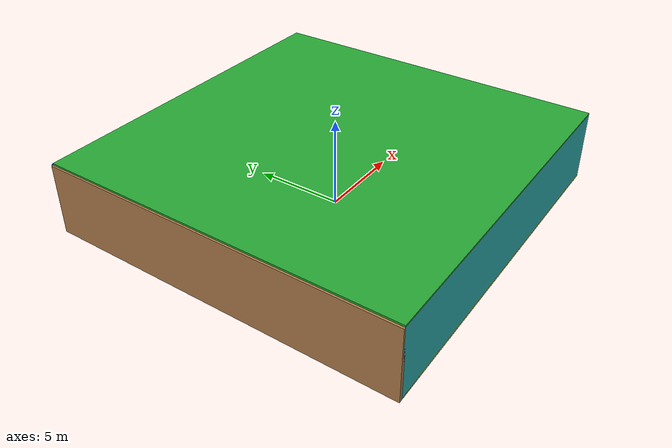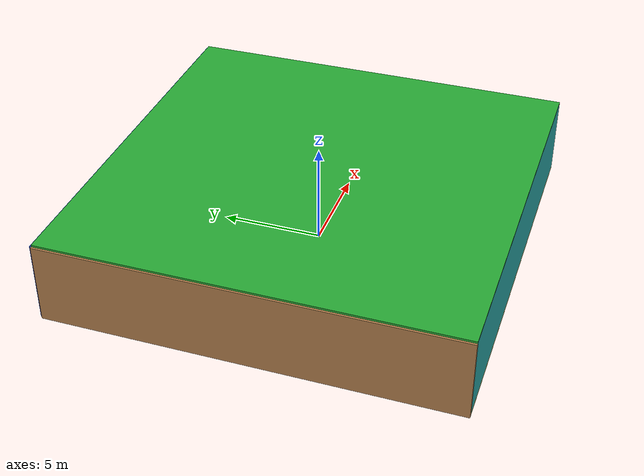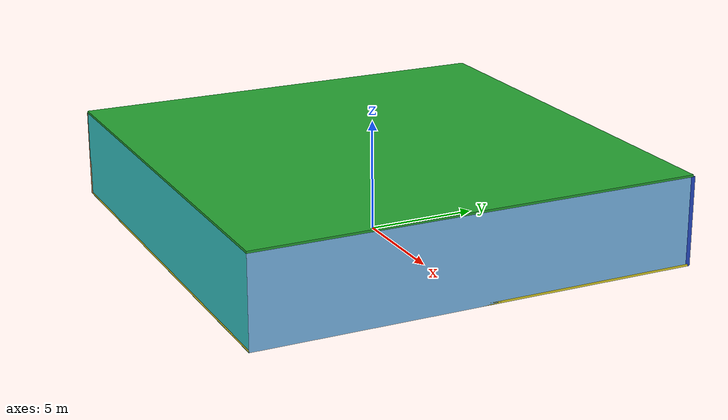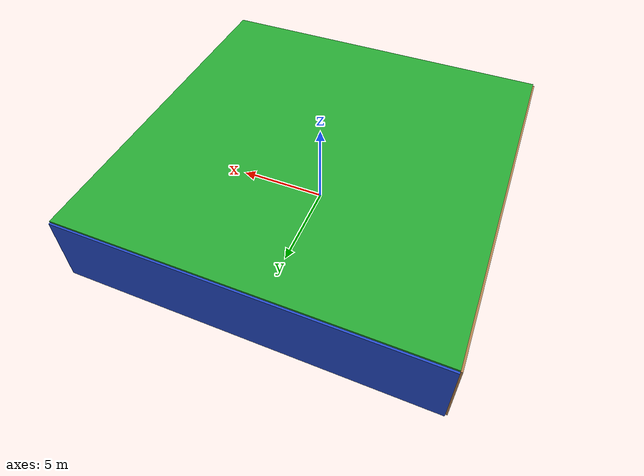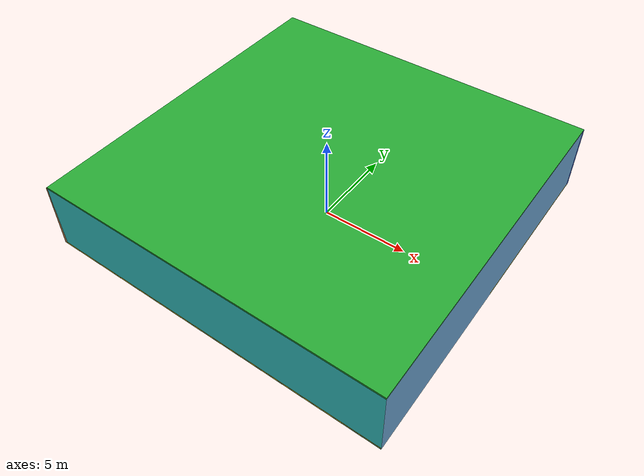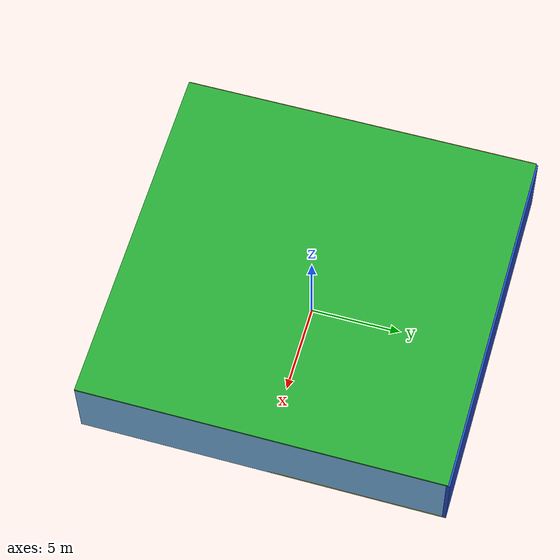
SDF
<sdf version="1.4">
 <world name="default">
  <physics type="ode">
   <max_step_size>0.001</max_step_size>
   <real_time_factor>1</real_time_factor>
   <real_time_update_rate>1000</real_time_update_rate>
   <gravity>0 0 -9.8</gravity>
  </physics>
  <scene><ambient>0.4 0.4 0.4 1</ambient><background>0.7 0.7 0.7 1</background><shadows>1</shadows></scene>
  <model name="Surrounding">
   <static>1</static>
   <link name="Ceiling">
    <collision name="Ceiling_Collision"><geometry><box><size>20 20 0.1</size></box></geometry></collision>
    <visual name="Ceiling_Visual">
     <geometry><box><size>20 20 0.1</size></box></geometry>
     <material>
      <script><uri>file://media/materials/scripts/gazebo.material</uri><name>Gazebo/Green</name></script>
     </material>
    </visual>
    <pose>0 0 4.05 0 0 0</pose>
   </link>
   <link name="Wall_South">
    <collision name="Wall_South_Collision">
     <geometry><box><size>20 0 4</size></box></geometry>
     <pose>0 0 2 0 -0 0</pose>
    </collision>
    <visual name="Wall_South_Visual">
     <pose>0 0 2 0 -0 0</pose>
     <geometry><box><size>20 0 4</size></box></geometry>
     <material>
      <script><uri>file://media/materials/scripts/gazebo.material</uri><name>Gazebo/TurquoiseGlow</name></script>
     </material>
    </visual>
    <velocity_decay><linear>0</linear><angular>0</angular></velocity_decay>
    <pose>0 -10 0 0 -0 0</pose>
   </link>
   <link name="Wall_East">
    <collision name="Wall_21_Collision">
     <geometry><box><size>20 0 4</size></box></geometry>
     <pose>0 0 2 0 -0 0</pose>
    </collision>
    <visual name="Wall_21_Visual">
     <pose>0 0 2 0 -0 0</pose>
     <geometry><box><size>20 0 4</size></box></geometry>
     <material>
      <script><uri>file://media/materials/scripts/gazebo.material</uri><name>Gazebo/SkyBlue</name></script>
     </material>
    </visual>
    <velocity_decay><linear>0</linear><angular>0</angular></velocity_decay>
    <pose>10 0 0 0 -0 1.5708</pose>
   </link>
   <link name="Wall_North">
    <collision name="Wall_22_Collision">
     <geometry><box><size>20 0.2 4</size></box></geometry>
     <pose>0 0 2 0 -0 0</pose>
    </collision>
    <visual name="Wall_22_Visual">
     <pose>0 0 2 0 -0 0</pose>
     <geometry><box><size>20 0.2 4</size></box></geometry>
     <material>
      <script><uri>file://media/materials/scripts/gazebo.material</uri><name>Gazebo/BlueGlow</name></script>
     </material>
    </visual>
    <velocity_decay><linear>0</linear><angular>0</angular></velocity_decay>
    <pose>0 10 0 0 -0 0</pose>
   </link>
   <link name="Wall_West">
    <collision name="Wall_23_Collision">
     <geometry><box><size>20 0.2 4</size></box></geometry>
     <pose>0 0 2 0 -0 0</pose>
    </collision>
    <visual name="Wall_23_Visual">
     <pose>0 0 2 0 -0 0</pose>
     <geometry><box><size>20 0.2 4</size></box></geometry>
     <material>
      <script><uri>file://media/materials/scripts/gazebo.material</uri><name>Gazebo/Wood</name></script>
     </material>
    </visual>
    <velocity_decay><linear>0</linear><angular>0</angular></velocity_decay>
    <pose>-10 0 0 0 0 -1.5708</pose>
   </link>
   <link name="Ground_link">
    <collision name="collision">
     <pose>0 0 .05 0 -0 0</pose>
     <geometry><box><size>20 20 0.1</size></box></geometry>
    </collision>
    <visual name="visual">
     <pose>0 0 .05 0 -0 0</pose>
     <geometry><box><size>20 20 0.1</size></box></geometry>
     <material>
      <script><uri>file://media/materials/scripts/gazebo.material</uri><name>Gazebo/YellowGlow</name></script>
     </material>
    </visual>
   </link>
   <static>1</static>
  </model>
  <spherical_coordinates>
   <surface_model>EARTH_WGS84</surface_model>
   <latitude_deg>0</latitude_deg>
   <longitude_deg>0</longitude_deg>
   <elevation>0</elevation>
   <heading_deg>0</heading_deg>
  </spherical_coordinates>
  <light name="lightball_0" type="diffuse">
   <diffuse>0.8 0.8 0.8 1</diffuse>
   <specular>0.2 0.2 0.2 1</specular>
   <attenuation>
    <range>100</range>
    <constant>0.7</constant>
    <linear>0.01</linear>
    <quadratic>0.001</quadratic>
   </attenuation>
   <direction>-0.5 0.1 -0.9</direction>
   <pose>-9.71194089378 2.75871638434 0.845920949507 0 0 0</pose>
  </light>
  <light name="lightball_1" type="diffuse">
   <diffuse>0.8 0.8 0.8 1</diffuse>
   <specular>0.2 0.2 0.2 1</specular>
   <attenuation>
    <range>100</range>
    <constant>0.7</constant>
    <linear>0.01</linear>
    <quadratic>0.001</quadratic>
   </attenuation>
   <direction>-0.5 0.1 -0.9</direction>
   <pose>2.45194045382 -5.00933954884 3.13593967431 0 0 0</pose>
  </light>
  <light name="lightball_2" type="diffuse">
   <diffuse>0.8 0.8 0.8 1</diffuse>
   <specular>0.2 0.2 0.2 1</specular>
   <attenuation>
    <range>100</range>
    <constant>0.7</constant>
    <linear>0.01</linear>
    <quadratic>0.001</quadratic>
   </attenuation>
   <direction>-0.5 0.1 -0.9</direction>
   <pose>4.26801763146 9.06748273958 2.29379657424 0 0 0</pose>
  </light>
  <light name="lightball_3" type="diffuse">
   <diffuse>0.8 0.8 0.8 1</diffuse>
   <specular>0.2 0.2 0.2 1</specular>
   <attenuation>
    <range>100</range>
    <constant>0.7</constant>
    <linear>0.01</linear>
    <quadratic>0.001</quadratic>
   </attenuation>
   <direction>-0.5 0.1 -0.9</direction>
   <pose>2.55221564467 2.55250751559 1.93001062052 0 0 0</pose>
  </light>
  <light name="lightball_4" type="diffuse">
   <diffuse>0.8 0.8 0.8 1</diffuse>
   <specular>0.2 0.2 0.2 1</specular>
   <attenuation>
    <range>100</range>
    <constant>0.7</constant>
    <linear>0.01</linear>
    <quadratic>0.001</quadratic>
   </attenuation>
   <direction>-0.5 0.1 -0.9</direction>
   <pose>0.959729005586 -2.13216580845 1.82687099693 0 0 0</pose>
  </light>
  <light name="lightball_5" type="diffuse">
   <diffuse>0.8 0.8 0.8 1</diffuse>
   <specular>0.2 0.2 0.2 1</specular>
   <attenuation>
    <range>100</range>
    <constant>0.7</constant>
    <linear>0.01</linear>
    <quadratic>0.001</quadratic>
   </attenuation>
   <direction>-0.5 0.1 -0.9</direction>
   <pose>-7.01481222836 -5.40208747364 1.95251776275 0 0 0</pose>
  </light>
  <include><uri>model://table</uri><pose>-0.838303670283 -4.02406910426 0 0 0 2.87567668219</pose></include>
  <include><uri>model://cabinet</uri><pose>-1.47581229945 1.89276245861 0 0 0 1.28457723786</pose></include>
  <include>
   <uri>model://textured_shapes</uri>
   <pose>-1.31167458853 4.81051968412 0 0 0 2.41936792682</pose>
  </include>
  <include>
   <uri>model://textured_shapes</uri>
   <pose>4.80918132054 0.807297498968 0 0 0 2.41412626798</pose>
  </include>
  <include>
   <uri>model://robocup_3Dsim_goal</uri>
   <pose>7.99600127644 4.81519986853 0 0 0 2.38099173719</pose>
  </include>
 </world>
</sdf>

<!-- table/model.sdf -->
<sdf version="1.5">
  <model name="table">
    <static>true</static>
    <link name="link">
      <collision name="surface">
        <pose>0 0 1.0 0 0 0</pose>
        <geometry>
          <box>
            <size>1.5 0.8 0.03</size>
          </box>
        </geometry>
        <surface>
          <friction>
            <ode>
              <mu>0.6</mu>
              <mu2>0.6</mu2>
            </ode>
          </friction>
        </surface>
      </collision>
      <visual name="visual1">
        <pose>0 0 1.0 0 0 0</pose>
        <geometry>
          <box>
            <size>1.5 0.8 0.03</size>
          </box>
        </geometry>
        <material>
          <script>
            <uri>model://media/materials/scripts/gazebo.material</uri>
            <name>Gazebo/Wood</name>
          </script>
        </material>
      </visual>
      <collision name="front_left_leg">
        <pose>0.68 0.38 0.5 0 0 0</pose>
        <geometry>
          <cylinder>
            <radius>0.02</radius>
            <length>1.0</length>
          </cylinder>
        </geometry>
      </collision>
      <visual name="front_left_leg">
        <pose>0.68 0.38 0.5 0 0 0</pose>
        <geometry>
          <cylinder>
            <radius>0.02</radius>
            <length>1.0</length>
          </cylinder>
        </geometry>
        <material>
          <script>
            <uri>model://media/materials/scripts/gazebo.material</uri>
            <name>Gazebo/Grey</name>
          </script>
        </material>
      </visual>
      <collision name="front_right_leg">
        <pose>0.68 -0.38 0.5 0 0 0</pose>
        <geometry>
          <cylinder>
            <radius>0.02</radius>
            <length>1.0</length>
          </cylinder>
        </geometry>
      </collision>
      <visual name="front_right_leg">
        <pose>0.68 -0.38 0.5 0 0 0</pose>
        <geometry>
          <cylinder>
            <radius>0.02</radius>
            <length>1.0</length>
          </cylinder>
        </geometry>
        <material>
          <script>
            <uri>model://media/materials/scripts/gazebo.material</uri>
            <name>Gazebo/Grey</name>
          </script>
        </material>
      </visual>
      <collision name="back_right_leg">
        <pose>-0.68 -0.38 0.5 0 0 0</pose>
        <geometry>
          <cylinder>
            <radius>0.02</radius>
            <length>1.0</length>
          </cylinder>
        </geometry>
      </collision>
      <visual name="back_right_leg">
        <pose>-0.68 -0.38 0.5 0 0 0</pose>
        <geometry>
          <cylinder>
            <radius>0.02</radius>
            <length>1.0</length>
          </cylinder>
        </geometry>
        <material>
          <script>
            <uri>model://media/materials/scripts/gazebo.material</uri>
            <name>Gazebo/Grey</name>
          </script>
        </material>
      </visual>
      <collision name="back_left_leg">
        <pose>-0.68 0.38 0.5 0 0 0</pose>
        <geometry>
          <cylinder>
            <radius>0.02</radius>
            <length>1.0</length>
          </cylinder>
        </geometry>
      </collision>
      <visual name="back_left_leg">
        <pose>-0.68 0.38 0.5 0 0 0</pose>
        <geometry>
          <cylinder>
            <radius>0.02</radius>
            <length>1.0</length>
          </cylinder>
        </geometry>
        <material>
          <script>
            <uri>model://media/materials/scripts/gazebo.material</uri>
            <name>Gazebo/Grey</name>
          </script>
        </material>
      </visual>
    </link>
  </model>
</sdf>

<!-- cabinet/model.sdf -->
<sdf version="1.5">
  <model name="cabinet">
    <static>true</static>
    <link name="cabinet_bottom_plate">
      <inertial>
        <pose>0 0 -1 0 0 0</pose>
        <inertia>
          <ixx>2.050000</ixx>
          <ixy>0</ixy>
          <ixz>0</ixz>
          <iyy>2.050000</iyy>
          <iyz>0</iyz>
          <izz>2.050000</izz>
        </inertia>
        <mass>25.000000</mass>
      </inertial>
      <collision name="cabinet_bottom_plate_geom">
        <pose>0 0 0.010000 0 0 0</pose>
        <geometry>
          <box>
            <size>0.450000 0.450000 0.020000</size>
          </box>
        </geometry>
      </collision>
      <visual name="cabinet_bottom_plate_geom_visual">
        <pose>0 0 0.010000 0 0 0</pose>
        <geometry>
          <box>
            <size>0.450000 0.450000 0.020000</size>
          </box>
        </geometry>
        <material>
          <script>
            <uri>model://media/materials/scripts/gazebo.material</uri>
            <name>Gazebo/Wood</name>
          </script>
        </material>
      </visual>
      <collision name="cabinet_bottom_plate_geom_cabinet_back_plate">
        <pose>0.235000 0 0.510000 0 0 0</pose>
        <geometry>
          <box>
            <size>0.020000 0.450000 1.020000</size>
          </box>
        </geometry>
      </collision>
      <visual name="cabinet_bottom_plate_geom_cabinet_back_plate_visual">
        <pose>0.235000 0 0.510000 0 0 0</pose>
        <geometry>
          <box>
            <size>0.020000 0.450000 1.020000</size>
          </box>
        </geometry>
        <material>
          <script>
            <uri>model://media/materials/scripts/gazebo.material</uri>
            <name>Gazebo/Wood</name>
          </script>
        </material>
      </visual>
      <collision name="cabinet_bottom_plate_geom_cabinet_left_plate">
        <pose>0 0.235000 0.510000 0 0 0</pose>
        <geometry>
          <box>
            <size>0.450000 0.020000 1.020000</size>
          </box>
        </geometry>
      </collision>
      <visual name="cabinet_bottom_plate_geom_cabinet_left_plate_visual">
        <pose>0 0.235000 0.510000 0 0 0</pose>
        <geometry>
          <box>
            <size>0.450000 0.020000 1.020000</size>
          </box>
        </geometry>
        <material>
          <script>
            <uri>model://media/materials/scripts/gazebo.material</uri>
            <name>Gazebo/Wood</name>
          </script>
        </material>
      </visual>
      <collision name="cabinet_bottom_plate_geom_cabinet_middle_plate">
        <pose>0 0 0.510000 0 0 0</pose>
        <geometry>
          <box>
            <size>0.450000 0.450000 0.020000</size>
          </box>
        </geometry>
      </collision>
      <visual name="cabinet_bottom_plate_geom_cabinet_middle_plate_visual">
        <pose>0 0 0.510000 0 0 0</pose>
        <geometry>
          <box>
            <size>0.450000 0.450000 0.020000</size>
          </box>
        </geometry>
        <material>
          <script>
            <uri>model://media/materials/scripts/gazebo.material</uri>
            <name>Gazebo/Wood</name>
          </script>
        </material>
      </visual>
      <collision name="cabinet_bottom_plate_geom_cabinet_right_plate">
        <pose>0 -0.235000 0.510000 0 0 0</pose>
        <geometry>
          <box>
            <size>0.450000 0.020000 1.020000</size>
          </box>
        </geometry>
      </collision>
      <visual name="cabinet_bottom_plate_geom_cabinet_right_plate_visual">
        <pose>0 -0.235000 0.510000 0 0 0</pose>
        <geometry>
          <box>
            <size>0.450000 0.020000 1.020000</size>
          </box>
        </geometry>
        <material>
          <script>
            <uri>model://media/materials/scripts/gazebo.material</uri>
            <name>Gazebo/Wood</name>
          </script>
        </material>
      </visual>
      <collision name="cabinet_bottom_plate_geom_cabinet_top_plate">
        <pose>0 0 1.010000 0 0 0</pose>
        <geometry>
          <box>
            <size>0.450000 0.450000 0.020000</size>
          </box>
        </geometry>
      </collision>
      <visual name="cabinet_bottom_plate_geom_cabinet_top_plate_visual">
        <pose>0 0 1.010000 0 0 0</pose>
        <geometry>
          <box>
            <size>0.450000 0.450000 0.020000</size>
          </box>
        </geometry>
        <material>
          <script>
            <uri>model://media/materials/scripts/gazebo.material</uri>
            <name>Gazebo/Wood</name>
          </script>
        </material>
      </visual>
    </link>
  </model>
</sdf>

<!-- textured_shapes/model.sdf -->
<sdf version="1.6">
  <model name="textured_shapes">
    <pose>0 0 0.5 0 0 0</pose>
    <link name="box">
      <pose>0 -1.5 0 0 0 0</pose>
      <collision name="collision">
        <geometry>
          <box>
            <size>1 1 1</size>
          </box>
        </geometry>
      </collision>
      <visual name="visual">
        <geometry>
          <box>
            <size>1 1 1</size>
          </box>
        </geometry>
        <material>
          <script>
            <uri>model://../model_source/models/textured_shapes/materials/scripts</uri>
            <uri>model://../model_source/models/textured_shapes/materials/textures</uri>
            <name>TexturedShape/Squares</name>
          </script>
        </material>
      </visual>
    </link>
    <link name="sphere">
      <collision name="collision">
        <geometry>
          <sphere>
            <radius>0.5</radius>
          </sphere>
        </geometry>
      </collision>
      <visual name="visual">
        <geometry>
          <sphere>
            <radius>0.5</radius>
          </sphere>
        </geometry>
        <material>
          <script>
            <uri>model://../model_source/models/textured_shapes/materials/scripts</uri>
            <uri>model://../model_source/models/textured_shapes/materials/textures</uri>
            <name>TexturedShape/Squares</name>
          </script>
        </material>
      </visual>
    </link>
    <link name="cylinder">
      <pose>0 1.5 0 0 0 0</pose>
      <collision name="collision">
        <geometry>
          <cylinder>
            <radius>0.5</radius>
            <length>1</length>
          </cylinder>
        </geometry>
      </collision>
      <visual name="visual">
        <geometry>
          <cylinder>
            <radius>0.5</radius>
            <length>1</length>
          </cylinder>
        </geometry>
        <material>
          <script>
            <uri>model://../model_source/models/textured_shapes/materials/scripts</uri>
            <uri>model://../model_source/models/textured_shapes/materials/textures</uri>
            <name>TexturedShape/Squares</name>
          </script>
        </material>
      </visual>
    </link>
  </model>
</sdf>

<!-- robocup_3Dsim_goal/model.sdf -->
<sdf version="1.5">
  <model name="robocup_3d_goal">
    <static>true</static>
    <link name="left_post">
      <pose>0 1.05 0.45 0 0 0</pose>
      <collision name="collision">
        <geometry>
          <cylinder>
            <radius>0.05</radius>
            <length>0.9</length>
          </cylinder>
        </geometry>
      </collision>
      <visual name="visual">
        <geometry>
          <cylinder>
            <radius>0.05</radius>
            <length>0.9</length>
          </cylinder>
        </geometry>
        <material>
          <script>
            <uri>file://media/materials/scripts/gazebo.material</uri>
            <name>Gazebo/ZincYellow</name>
          </script>
        </material>
      </visual>
    </link>
    <link name="left_support_horiz_lower">
      <pose>0.30 1.05 0.01 0 0 0</pose>
      <collision name="collision">
        <geometry>
          <box>
            <size>0.50 0.02 0.02</size>
          </box>
        </geometry>
      </collision>
      <visual name="visual">
        <geometry>
          <box>
            <size>0.50 0.02 0.02</size>
          </box>
        </geometry>
        <material>
          <script>
            <uri>file://media/materials/scripts/gazebo.material</uri>
            <name>Gazebo/White</name>
          </script>
        </material>
      </visual>
    </link>
    <link name="left_support_horiz_upper">
      <pose>0.30 1.05 0.79 0 0 0</pose>
      <collision name="collision">
        <geometry>
          <box>
            <size>0.50 0.02 0.02</size>
          </box>
        </geometry>
      </collision>
      <visual name="visual">
        <geometry>
          <box>
            <size>0.50 0.02 0.02</size>
          </box>
        </geometry>
        <material>
          <script>
            <uri>file://media/materials/scripts/gazebo.material</uri>
            <name>Gazebo/White</name>
          </script>
        </material>
      </visual>
    </link>
    <link name="left_support_vertical">
      <pose>0.56 1.05 0.4 0 1.5708 0</pose>
      <collision name="collision">
        <geometry>
          <box>
            <size>0.80 0.02 0.02</size>
          </box>
        </geometry>
      </collision>
      <visual name="visual">
        <geometry>
          <box>
            <size>0.80 0.02 0.02</size>
          </box>
        </geometry>
        <material>
          <script>
            <uri>file://media/materials/scripts/gazebo.material</uri>
            <name>Gazebo/White</name>
          </script>
        </material>
      </visual>
    </link>
    <link name="right_support_horiz_lower">
      <pose>0.30 -1.05 0.01 0 0 0</pose>
      <collision name="collision">
        <geometry>
          <box>
            <size>0.50 0.02 0.02</size>
          </box>
        </geometry>
      </collision>
      <visual name="visual">
        <geometry>
          <box>
            <size>0.50 0.02 0.02</size>
          </box>
        </geometry>
        <material>
          <script>
            <uri>file://media/materials/scripts/gazebo.material</uri>
            <name>Gazebo/White</name>
          </script>
        </material>
      </visual>
    </link>
    <link name="right_support_horiz_upper">
      <pose>0.30 -1.05 0.79 0 0 0</pose>
      <collision name="collision">
        <geometry>
          <box>
            <size>0.50 0.02 0.02</size>
          </box>
        </geometry>
      </collision>
      <visual name="visual">
        <geometry>
          <box>
            <size>0.50 0.02 0.02</size>
          </box>
        </geometry>
        <material>
          <script>
            <uri>file://media/materials/scripts/gazebo.material</uri>
            <name>Gazebo/White</name>
          </script>
        </material>
      </visual>
    </link>
    <link name="right_support_vertical">
      <pose>0.56 -1.05 0.4 0 1.5708 0</pose>
      <collision name="collision">
        <geometry>
          <box>
            <size>0.80 0.02 0.02</size>
          </box>
        </geometry>
      </collision>
      <visual name="visual">
        <geometry>
          <box>
            <size>0.80 0.02 0.02</size>
          </box>
        </geometry>
        <material>
          <script>
            <uri>file://media/materials/scripts/gazebo.material</uri>
            <name>Gazebo/White</name>
          </script>
        </material>
      </visual>
    </link>
    <link name="center_support_horiz_lower">
      <pose>0.56 0 0.01 0 1.5708 0</pose>
      <collision name="collision">
        <geometry>
          <box>
            <size>0.02 2.08 0.02</size>
          </box>
        </geometry>
      </collision>
      <visual name="visual">
        <geometry>
          <box>
            <size>0.02 2.08 0.02</size>
          </box>
        </geometry>
        <material>
          <script>
            <uri>file://media/materials/scripts/gazebo.material</uri>
            <name>Gazebo/White</name>
          </script>
        </material>
      </visual>
    </link>
    <link name="center_support_horiz_upper">
      <pose>0.56 0 0.79 0 1.5708 0</pose>
      <collision name="collision">
        <geometry>
          <box>
            <size>0.02 2.08 0.02</size>
          </box>
        </geometry>
      </collision>
      <visual name="visual">
        <geometry>
          <box>
            <size>0.02 2.08 0.02</size>
          </box>
        </geometry>
        <material>
          <script>
            <uri>file://media/materials/scripts/gazebo.material</uri>
            <name>Gazebo/White</name>
          </script>
        </material>
      </visual>
    </link>
    <link name="right_post">
      <pose>0 -1.05 0.45 0 0 0</pose>
      <collision name="collision">
        <geometry>
          <cylinder>
            <radius>0.05</radius>
            <length>0.9</length>
          </cylinder>
        </geometry>
      </collision>
      <visual name="visual">
        <geometry>
          <cylinder>
            <radius>0.05</radius>
            <length>0.9</length>
          </cylinder>
        </geometry>
        <material>
          <script>
            <uri>file://media/materials/scripts/gazebo.material</uri>
            <name>Gazebo/ZincYellow</name>
          </script>
        </material>
      </visual>
    </link>
    <link name="crossbar">
      <pose>0 0 0.85 1.57 1.57 0</pose>
      <collision name="collision">
        <geometry>
          <cylinder>
            <radius>0.05</radius>
            <length>2.0</length>
          </cylinder>
        </geometry>
      </collision>
      <visual name="visual">
        <geometry>
          <cylinder>
            <radius>0.05</radius>
            <length>2.0</length>
          </cylinder>
        </geometry>
        <material>
          <script>
            <uri>file://media/materials/scripts/gazebo.material</uri>
            <name>Gazebo/ZincYellow</name>
          </script>
        </material>
      </visual>
    </link>
    <link name="center_net">
      <pose>0.56 0 0.40 0 0 0</pose>
      <collision name="collision">
        <geometry>
          <box>
            <size>0.01 2.1 0.80</size>
          </box>
        </geometry>
      </collision>
      <visual name="visual">
        <geometry>
          <box>
            <size>0.01 2.1 0.80</size>
          </box>
        </geometry>
        <material>
          <script>
            <uri>model://../model_source/models/robocup09_spl_field/materials/scripts/</uri>
            <uri>model://../model_source/models/robocup09_spl_field/materials/textures/</uri>
            <name>RoboCup/Net</name>
          </script>
        </material>
      </visual>
    </link>
    <link name="left_net">
      <pose>0.30 1.05 0.40 0 0 0</pose>
      <collision name="collision">
        <geometry>
          <box>
            <size>0.50 0.01 0.76</size>
          </box>
        </geometry>
      </collision>
      <visual name="visual">
        <geometry>
          <box>
            <size>0.50 0.01 0.76</size>
          </box>
        </geometry>
        <material>
          <script>
            <uri>model://../model_source/models/robocup09_spl_field/materials/scripts/</uri>
            <uri>model://../model_source/models/robocup09_spl_field/materials/textures/</uri>
            <name>RoboCup/Net</name>
          </script>
        </material>
      </visual>
    </link>
    <link name="right_net">
      <pose>0.30 -1.05 0.40 0 0 0</pose>
      <collision name="collision">
        <geometry>
          <box>
            <size>0.50 0.01 0.76</size>
          </box>
        </geometry>
      </collision>
      <visual name="visual">
        <geometry>
          <box>
            <size>0.50 0.01 0.76</size>
          </box>
        </geometry>
        <material>
          <script>
            <uri>model://../model_source/models/robocup09_spl_field/materials/scripts/</uri>
            <uri>model://../model_source/models/robocup09_spl_field/materials/textures/</uri>
            <name>RoboCup/Net</name>
          </script>
        </material>
      </visual>
    </link>
  </model>
</sdf>
